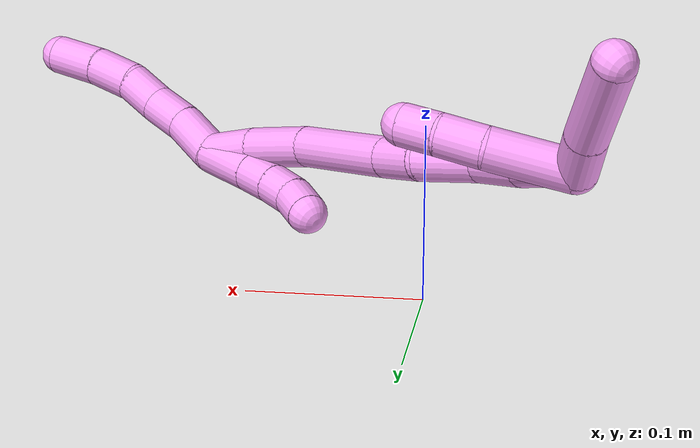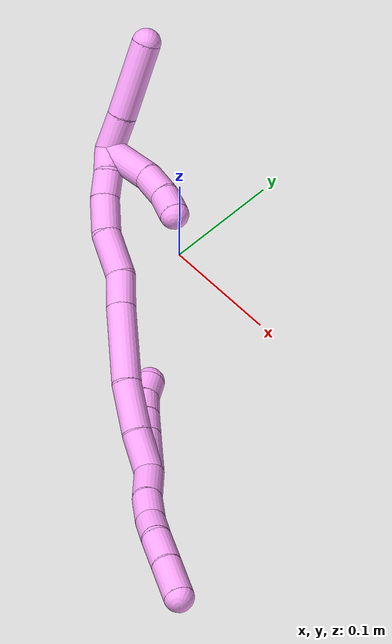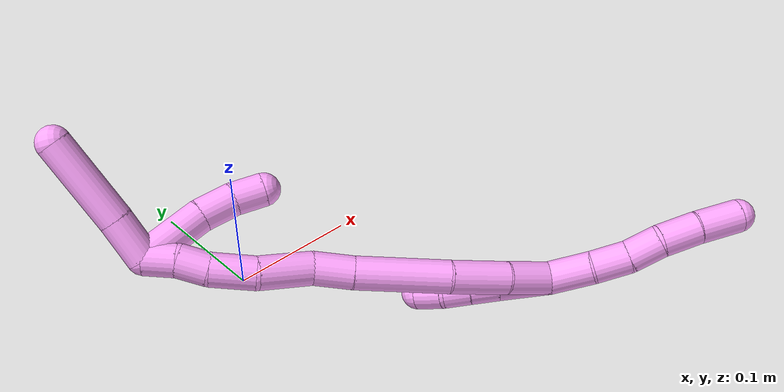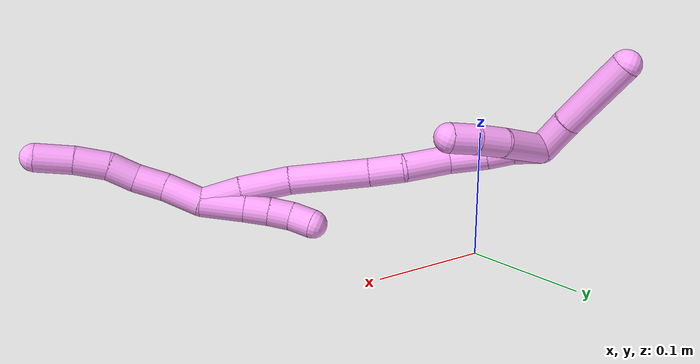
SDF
<sdf version="1.7">
 <world name="default">
  <model name="4">
   <static>0</static>
   <link name="4">
    <collision name="collision-cylinder-e_1_2_8">
     <pose>-1.6e-05 8e-06 0.017228 -0.000478 -0.00091 0</pose>
     <geometry><cylinder><radius>0.0125</radius><length>0.034456</length></cylinder></geometry>
     <surface>
      <friction><ode><mu>1.16</mu><mu2>1.16</mu2><slip1>0</slip1><slip2>0</slip2></ode></friction>
      <contact><ode><kp>1e+06</kp><kd>1</kd><max_vel>0</max_vel><min_depth>0.001</min_depth></ode></contact>
     </surface>
    </collision>
    <visual name="visual-cylinder-e_1_2_8">
     <pose>-1.6e-05 8e-06 0.017228 -0.000478 -0.00091 0</pose>
     <geometry><cylinder><radius>0.0125</radius><length>0.034456</length></cylinder></geometry>
     <material><ambient>1 0.65098 0.996078 1</ambient></material>
    </visual>
    <collision name="collision-cylinder-e_2_8_9">
     <pose>0.002154 0.000143 0.047973 -0.009375 0.160269 -0.000753</pose>
     <geometry><cylinder><radius>0.0125</radius><length>0.027387</length></cylinder></geometry>
     <surface>
      <friction><ode><mu>1.16</mu><mu2>1.16</mu2><slip1>0</slip1><slip2>0</slip2></ode></friction>
      <contact><ode><kp>1e+06</kp><kd>1</kd><max_vel>0</max_vel><min_depth>0.001</min_depth></ode></contact>
     </surface>
    </collision>
    <visual name="visual-cylinder-e_2_8_9">
     <pose>0.002154 0.000143 0.047973 -0.009375 0.160269 -0.000753</pose>
     <geometry><cylinder><radius>0.0125</radius><length>0.027387</length></cylinder></geometry>
     <material><ambient>1 0.65098 0.996078 1</ambient></material>
    </visual>
    <collision name="collision-cylinder-e_3_9_10">
     <pose>0.006337 0.002728 0.073753 -0.197827 0.158408 -0.015753</pose>
     <geometry><cylinder><radius>0.0125</radius><length>0.025329</length></cylinder></geometry>
     <surface>
      <friction><ode><mu>1.16</mu><mu2>1.16</mu2><slip1>0</slip1><slip2>0</slip2></ode></friction>
      <contact><ode><kp>1e+06</kp><kd>1</kd><max_vel>0</max_vel><min_depth>0.001</min_depth></ode></contact>
     </surface>
    </collision>
    <visual name="visual-cylinder-e_3_9_10">
     <pose>0.006337 0.002728 0.073753 -0.197827 0.158408 -0.015753</pose>
     <geometry><cylinder><radius>0.0125</radius><length>0.025329</length></cylinder></geometry>
     <material><ambient>1 0.65098 0.996078 1</ambient></material>
    </visual>
    <collision name="collision-cylinder-e_4_10_11">
     <pose>0.013384 0.00546 0.099914 -0.019731 0.348354 -0.003472</pose>
     <geometry><cylinder><radius>0.0125</radius><length>0.029582</length></cylinder></geometry>
     <surface>
      <friction><ode><mu>1.16</mu><mu2>1.16</mu2><slip1>0</slip1><slip2>0</slip2></ode></friction>
      <contact><ode><kp>1e+06</kp><kd>1</kd><max_vel>0</max_vel><min_depth>0.001</min_depth></ode></contact>
     </surface>
    </collision>
    <visual name="visual-cylinder-e_4_10_11">
     <pose>0.013384 0.00546 0.099914 -0.019731 0.348354 -0.003472</pose>
     <geometry><cylinder><radius>0.0125</radius><length>0.029582</length></cylinder></geometry>
     <material><ambient>1 0.65098 0.996078 1</ambient></material>
    </visual>
    <collision name="collision-cylinder-e_5_11_6">
     <pose>0.025134 0.0047 0.128991 0.068017 0.414966 0.014324</pose>
     <geometry><cylinder><radius>0.0125</radius><length>0.033246</length></cylinder></geometry>
     <surface>
      <friction><ode><mu>1.16</mu><mu2>1.16</mu2><slip1>0</slip1><slip2>0</slip2></ode></friction>
      <contact><ode><kp>1e+06</kp><kd>1</kd><max_vel>0</max_vel><min_depth>0.001</min_depth></ode></contact>
     </surface>
    </collision>
    <visual name="visual-cylinder-e_5_11_6">
     <pose>0.025134 0.0047 0.128991 0.068017 0.414966 0.014324</pose>
     <geometry><cylinder><radius>0.0125</radius><length>0.033246</length></cylinder></geometry>
     <material><ambient>1 0.65098 0.996078 1</ambient></material>
    </visual>
    <collision name="collision-cylinder-e_1_2_12">
     <pose>-0.003985 0.003377 -0.01835 -2.95958 -0.210432 1.71632</pose>
     <geometry><cylinder><radius>0.0125</radius><length>0.038159</length></cylinder></geometry>
     <surface>
      <friction><ode><mu>1.16</mu><mu2>1.16</mu2><slip1>0</slip1><slip2>0</slip2></ode></friction>
      <contact><ode><kp>1e+06</kp><kd>1</kd><max_vel>0</max_vel><min_depth>0.001</min_depth></ode></contact>
     </surface>
    </collision>
    <visual name="visual-cylinder-e_1_2_12">
     <pose>-0.003985 0.003377 -0.01835 -2.95958 -0.210432 1.71632</pose>
     <geometry><cylinder><radius>0.0125</radius><length>0.038159</length></cylinder></geometry>
     <material><ambient>1 0.65098 0.996078 1</ambient></material>
    </visual>
    <collision name="collision-cylinder-e_2_12_13">
     <pose>-0.010049 0.008468 -0.047117 -2.97855 -0.194396 1.74671</pose>
     <geometry><cylinder><radius>0.0125</radius><length>0.021517</length></cylinder></geometry>
     <surface>
      <friction><ode><mu>1.16</mu><mu2>1.16</mu2><slip1>0</slip1><slip2>0</slip2></ode></friction>
      <contact><ode><kp>1e+06</kp><kd>1</kd><max_vel>0</max_vel><min_depth>0.001</min_depth></ode></contact>
     </surface>
    </collision>
    <visual name="visual-cylinder-e_2_12_13">
     <pose>-0.010049 0.008468 -0.047117 -2.97855 -0.194396 1.74671</pose>
     <geometry><cylinder><radius>0.0125</radius><length>0.021517</length></cylinder></geometry>
     <material><ambient>1 0.65098 0.996078 1</ambient></material>
    </visual>
    <collision name="collision-cylinder-e_3_13_14">
     <pose>-0.01353 0.011549 -0.06743 -3.00434 -0.13949 1.587</pose>
     <geometry><cylinder><radius>0.0125</radius><length>0.020178</length></cylinder></geometry>
     <surface>
      <friction><ode><mu>1.16</mu><mu2>1.16</mu2><slip1>0</slip1><slip2>0</slip2></ode></friction>
      <contact><ode><kp>1e+06</kp><kd>1</kd><max_vel>0</max_vel><min_depth>0.001</min_depth></ode></contact>
     </surface>
    </collision>
    <visual name="visual-cylinder-e_3_13_14">
     <pose>-0.01353 0.011549 -0.06743 -3.00434 -0.13949 1.587</pose>
     <geometry><cylinder><radius>0.0125</radius><length>0.020178</length></cylinder></geometry>
     <material><ambient>1 0.65098 0.996078 1</ambient></material>
    </visual>
    <collision name="collision-cylinder-e_4_14_5">
     <pose>-0.013798 0.014694 -0.087176 -2.96297 0.112898 -1.12583</pose>
     <geometry><cylinder><radius>0.0125</radius><length>0.020146</length></cylinder></geometry>
     <surface>
      <friction><ode><mu>1.16</mu><mu2>1.16</mu2><slip1>0</slip1><slip2>0</slip2></ode></friction>
      <contact><ode><kp>1e+06</kp><kd>1</kd><max_vel>0</max_vel><min_depth>0.001</min_depth></ode></contact>
     </surface>
    </collision>
    <visual name="visual-cylinder-e_4_14_5">
     <pose>-0.013798 0.014694 -0.087176 -2.96297 0.112898 -1.12583</pose>
     <geometry><cylinder><radius>0.0125</radius><length>0.020146</length></cylinder></geometry>
     <material><ambient>1 0.65098 0.996078 1</ambient></material>
    </visual>
    <collision name="collision-cylinder-e_1_2_15">
     <pose>-0.00962 0.006537 -0.013342 -2.68598 -0.574585 1.811</pose>
     <geometry><cylinder><radius>0.0125</radius><length>0.0354</length></cylinder></geometry>
     <surface>
      <friction><ode><mu>1.16</mu><mu2>1.16</mu2><slip1>0</slip1><slip2>0</slip2></ode></friction>
      <contact><ode><kp>1e+06</kp><kd>1</kd><max_vel>0</max_vel><min_depth>0.001</min_depth></ode></contact>
     </surface>
    </collision>
    <visual name="visual-cylinder-e_1_2_15">
     <pose>-0.00962 0.006537 -0.013342 -2.68598 -0.574585 1.811</pose>
     <geometry><cylinder><radius>0.0125</radius><length>0.0354</length></cylinder></geometry>
     <material><ambient>1 0.65098 0.996078 1</ambient></material>
    </visual>
    <collision name="collision-cylinder-e_2_15_16">
     <pose>-0.028882 0.021112 -0.044678 -2.72152 -0.455052 1.6533</pose>
     <geometry><cylinder><radius>0.0125</radius><length>0.043879</length></cylinder></geometry>
     <surface>
      <friction><ode><mu>1.16</mu><mu2>1.16</mu2><slip1>0</slip1><slip2>0</slip2></ode></friction>
      <contact><ode><kp>1e+06</kp><kd>1</kd><max_vel>0</max_vel><min_depth>0.001</min_depth></ode></contact>
     </surface>
    </collision>
    <visual name="visual-cylinder-e_2_15_16">
     <pose>-0.028882 0.021112 -0.044678 -2.72152 -0.455052 1.6533</pose>
     <geometry><cylinder><radius>0.0125</radius><length>0.043879</length></cylinder></geometry>
     <material><ambient>1 0.65098 0.996078 1</ambient></material>
    </visual>
    <collision name="collision-cylinder-e_3_16_17">
     <pose>-0.049174 0.041909 -0.093629 -2.75064 -0.307926 1.32954</pose>
     <geometry><cylinder><radius>0.0125</radius><length>0.070274</length></cylinder></geometry>
     <surface>
      <friction><ode><mu>1.16</mu><mu2>1.16</mu2><slip1>0</slip1><slip2>0</slip2></ode></friction>
      <contact><ode><kp>1e+06</kp><kd>1</kd><max_vel>0</max_vel><min_depth>0.001</min_depth></ode></contact>
     </surface>
    </collision>
    <visual name="visual-cylinder-e_3_16_17">
     <pose>-0.049174 0.041909 -0.093629 -2.75064 -0.307926 1.32954</pose>
     <geometry><cylinder><radius>0.0125</radius><length>0.070274</length></cylinder></geometry>
     <material><ambient>1 0.65098 0.996078 1</ambient></material>
    </visual>
    <collision name="collision-cylinder-e_4_17_18">
     <pose>-0.063909 0.061068 -0.13757 -2.68365 -0.275086 1.07187</pose>
     <geometry><cylinder><radius>0.0125</radius><length>0.030078</length></cylinder></geometry>
     <surface>
      <friction><ode><mu>1.16</mu><mu2>1.16</mu2><slip1>0</slip1><slip2>0</slip2></ode></friction>
      <contact><ode><kp>1e+06</kp><kd>1</kd><max_vel>0</max_vel><min_depth>0.001</min_depth></ode></contact>
     </surface>
    </collision>
    <visual name="visual-cylinder-e_4_17_18">
     <pose>-0.063909 0.061068 -0.13757 -2.68365 -0.275086 1.07187</pose>
     <geometry><cylinder><radius>0.0125</radius><length>0.030078</length></cylinder></geometry>
     <material><ambient>1 0.65098 0.996078 1</ambient></material>
    </visual>
    <collision name="collision-cylinder-e_5_18_19">
     <pose>-0.078368 0.072891 -0.166982 -2.8227 -0.540115 2.08905</pose>
     <geometry><cylinder><radius>0.0125</radius><length>0.040348</length></cylinder></geometry>
     <surface>
      <friction><ode><mu>1.16</mu><mu2>1.16</mu2><slip1>0</slip1><slip2>0</slip2></ode></friction>
      <contact><ode><kp>1e+06</kp><kd>1</kd><max_vel>0</max_vel><min_depth>0.001</min_depth></ode></contact>
     </surface>
    </collision>
    <visual name="visual-cylinder-e_5_18_19">
     <pose>-0.078368 0.072891 -0.166982 -2.8227 -0.540115 2.08905</pose>
     <geometry><cylinder><radius>0.0125</radius><length>0.040348</length></cylinder></geometry>
     <material><ambient>1 0.65098 0.996078 1</ambient></material>
    </visual>
    <collision name="collision-cylinder-e_6_19_20">
     <pose>-0.093592 0.084942 -0.197957 -2.71414 -0.294597 1.19928</pose>
     <geometry><cylinder><radius>0.0125</radius><length>0.033405</length></cylinder></geometry>
     <surface>
      <friction><ode><mu>1.16</mu><mu2>1.16</mu2><slip1>0</slip1><slip2>0</slip2></ode></friction>
      <contact><ode><kp>1e+06</kp><kd>1</kd><max_vel>0</max_vel><min_depth>0.001</min_depth></ode></contact>
     </surface>
    </collision>
    <visual name="visual-cylinder-e_6_19_20">
     <pose>-0.093592 0.084942 -0.197957 -2.71414 -0.294597 1.19928</pose>
     <geometry><cylinder><radius>0.0125</radius><length>0.033405</length></cylinder></geometry>
     <material><ambient>1 0.65098 0.996078 1</ambient></material>
    </visual>
    <collision name="collision-cylinder-e_7_20_21">
     <pose>-0.100614 0.098058 -0.221756 -2.52995 -0.18986 0.585811</pose>
     <geometry><cylinder><radius>0.0125</radius><length>0.02302</length></cylinder></geometry>
     <surface>
      <friction><ode><mu>1.16</mu><mu2>1.16</mu2><slip1>0</slip1><slip2>0</slip2></ode></friction>
      <contact><ode><kp>1e+06</kp><kd>1</kd><max_vel>0</max_vel><min_depth>0.001</min_depth></ode></contact>
     </surface>
    </collision>
    <visual name="visual-cylinder-e_7_20_21">
     <pose>-0.100614 0.098058 -0.221756 -2.52995 -0.18986 0.585811</pose>
     <geometry><cylinder><radius>0.0125</radius><length>0.02302</length></cylinder></geometry>
     <material><ambient>1 0.65098 0.996078 1</ambient></material>
    </visual>
    <collision name="collision-cylinder-e_8_21_1">
     <pose>-0.105087 0.108851 -0.241751 -2.76056 -0.196313 0.944184</pose>
     <geometry><cylinder><radius>0.0125</radius><length>0.023594</length></cylinder></geometry>
     <surface>
      <friction><ode><mu>1.16</mu><mu2>1.16</mu2><slip1>0</slip1><slip2>0</slip2></ode></friction>
      <contact><ode><kp>1e+06</kp><kd>1</kd><max_vel>0</max_vel><min_depth>0.001</min_depth></ode></contact>
     </surface>
    </collision>
    <visual name="visual-cylinder-e_8_21_1">
     <pose>-0.105087 0.108851 -0.241751 -2.76056 -0.196313 0.944184</pose>
     <geometry><cylinder><radius>0.0125</radius><length>0.023594</length></cylinder></geometry>
     <material><ambient>1 0.65098 0.996078 1</ambient></material>
    </visual>
    <collision name="collision-cylinder-e_1_1_22">
     <pose>-0.109383 0.129114 -0.25654 -1.81924 -0.120554 0.154834</pose>
     <geometry><cylinder><radius>0.0125</radius><length>0.033171</length></cylinder></geometry>
     <surface>
      <friction><ode><mu>1.16</mu><mu2>1.16</mu2><slip1>0</slip1><slip2>0</slip2></ode></friction>
      <contact><ode><kp>1e+06</kp><kd>1</kd><max_vel>0</max_vel><min_depth>0.001</min_depth></ode></contact>
     </surface>
    </collision>
    <visual name="visual-cylinder-e_1_1_22">
     <pose>-0.109383 0.129114 -0.25654 -1.81924 -0.120554 0.154834</pose>
     <geometry><cylinder><radius>0.0125</radius><length>0.033171</length></cylinder></geometry>
     <material><ambient>1 0.65098 0.996078 1</ambient></material>
    </visual>
    <collision name="collision-cylinder-e_2_22_4">
     <pose>-0.116125 0.17678 -0.270007 -1.85952 -0.142563 0.190806</pose>
     <geometry><cylinder><radius>0.0125</radius><length>0.066829</length></cylinder></geometry>
     <surface>
      <friction><ode><mu>1.16</mu><mu2>1.16</mu2><slip1>0</slip1><slip2>0</slip2></ode></friction>
      <contact><ode><kp>1e+06</kp><kd>1</kd><max_vel>0</max_vel><min_depth>0.001</min_depth></ode></contact>
     </surface>
    </collision>
    <visual name="visual-cylinder-e_2_22_4">
     <pose>-0.116125 0.17678 -0.270007 -1.85952 -0.142563 0.190806</pose>
     <geometry><cylinder><radius>0.0125</radius><length>0.066829</length></cylinder></geometry>
     <material><ambient>1 0.65098 0.996078 1</ambient></material>
    </visual>
    <collision name="collision-cylinder-e_1_1_23">
     <pose>-0.091215 0.119989 -0.234364 -0.360531 0.695609 -0.13195</pose>
     <geometry><cylinder><radius>0.0125</radius><length>0.050475</length></cylinder></geometry>
     <surface>
      <friction><ode><mu>1.16</mu><mu2>1.16</mu2><slip1>0</slip1><slip2>0</slip2></ode></friction>
      <contact><ode><kp>1e+06</kp><kd>1</kd><max_vel>0</max_vel><min_depth>0.001</min_depth></ode></contact>
     </surface>
    </collision>
    <visual name="visual-cylinder-e_1_1_23">
     <pose>-0.091215 0.119989 -0.234364 -0.360531 0.695609 -0.13195</pose>
     <geometry><cylinder><radius>0.0125</radius><length>0.050475</length></cylinder></geometry>
     <material><ambient>1 0.65098 0.996078 1</ambient></material>
    </visual>
    <collision name="collision-cylinder-e_2_23_24">
     <pose>-0.067773 0.12846 -0.205064 -0.145459 0.572015 -0.042844</pose>
     <geometry><cylinder><radius>0.0125</radius><length>0.026855</length></cylinder></geometry>
     <surface>
      <friction><ode><mu>1.16</mu><mu2>1.16</mu2><slip1>0</slip1><slip2>0</slip2></ode></friction>
      <contact><ode><kp>1e+06</kp><kd>1</kd><max_vel>0</max_vel><min_depth>0.001</min_depth></ode></contact>
     </surface>
    </collision>
    <visual name="visual-cylinder-e_2_23_24">
     <pose>-0.067773 0.12846 -0.205064 -0.145459 0.572015 -0.042844</pose>
     <geometry><cylinder><radius>0.0125</radius><length>0.026855</length></cylinder></geometry>
     <material><ambient>1 0.65098 0.996078 1</ambient></material>
    </visual>
    <collision name="collision-cylinder-e_3_24_3">
     <pose>-0.055297 0.129779 -0.18383 0.031514 0.477326 0.007668</pose>
     <geometry><cylinder><radius>0.0125</radius><length>0.02267</length></cylinder></geometry>
     <surface>
      <friction><ode><mu>1.16</mu><mu2>1.16</mu2><slip1>0</slip1><slip2>0</slip2></ode></friction>
      <contact><ode><kp>1e+06</kp><kd>1</kd><max_vel>0</max_vel><min_depth>0.001</min_depth></ode></contact>
     </surface>
    </collision>
    <visual name="visual-cylinder-e_3_24_3">
     <pose>-0.055297 0.129779 -0.18383 0.031514 0.477326 0.007668</pose>
     <geometry><cylinder><radius>0.0125</radius><length>0.02267</length></cylinder></geometry>
     <material><ambient>1 0.65098 0.996078 1</ambient></material>
    </visual>
    <collision name="collision-sphere-3">
     <pose>-0.050089 0.129462 -0.173767 0 -0 0</pose>
     <geometry><sphere><radius>0.0125</radius></sphere></geometry>
     <surface>
      <friction><ode><mu>1.16</mu><mu2>1.16</mu2><slip1>0</slip1><slip2>0</slip2></ode></friction>
      <contact><ode><kp>1e+06</kp><kd>1</kd><max_vel>0</max_vel><min_depth>0.001</min_depth></ode></contact>
     </surface>
    </collision>
    <visual name="visual-sphere-3">
     <pose>-0.050089 0.129462 -0.173767 0 -0 0</pose>
     <geometry><sphere><radius>0.0125</radius></sphere></geometry>
     <material><ambient>1 0.65098 0.996078 1</ambient></material>
    </visual>
    <collision name="collision-sphere-24">
     <pose>-0.060504 0.130096 -0.193893 0 -0 0</pose>
     <geometry><sphere><radius>0.0125</radius></sphere></geometry>
     <surface>
      <friction><ode><mu>1.16</mu><mu2>1.16</mu2><slip1>0</slip1><slip2>0</slip2></ode></friction>
      <contact><ode><kp>1e+06</kp><kd>1</kd><max_vel>0</max_vel><min_depth>0.001</min_depth></ode></contact>
     </surface>
    </collision>
    <visual name="visual-sphere-24">
     <pose>-0.060504 0.130096 -0.193893 0 -0 0</pose>
     <geometry><sphere><radius>0.0125</radius></sphere></geometry>
     <material><ambient>1 0.65098 0.996078 1</ambient></material>
    </visual>
    <collision name="collision-sphere-23">
     <pose>-0.075041 0.126823 -0.216235 0 -0 0</pose>
     <geometry><sphere><radius>0.0125</radius></sphere></geometry>
     <surface>
      <friction><ode><mu>1.16</mu><mu2>1.16</mu2><slip1>0</slip1><slip2>0</slip2></ode></friction>
      <contact><ode><kp>1e+06</kp><kd>1</kd><max_vel>0</max_vel><min_depth>0.001</min_depth></ode></contact>
     </surface>
    </collision>
    <visual name="visual-sphere-23">
     <pose>-0.075041 0.126823 -0.216235 0 -0 0</pose>
     <geometry><sphere><radius>0.0125</radius></sphere></geometry>
     <material><ambient>1 0.65098 0.996078 1</ambient></material>
    </visual>
    <collision name="collision-sphere-4">
     <pose>-0.120873 0.208486 -0.279424 0 -0 0</pose>
     <geometry><sphere><radius>0.0125</radius></sphere></geometry>
     <surface>
      <friction><ode><mu>1.16</mu><mu2>1.16</mu2><slip1>0</slip1><slip2>0</slip2></ode></friction>
      <contact><ode><kp>1e+06</kp><kd>1</kd><max_vel>0</max_vel><min_depth>0.001</min_depth></ode></contact>
     </surface>
    </collision>
    <visual name="visual-sphere-4">
     <pose>-0.120873 0.208486 -0.279424 0 -0 0</pose>
     <geometry><sphere><radius>0.0125</radius></sphere></geometry>
     <material><ambient>1 0.65098 0.996078 1</ambient></material>
    </visual>
    <collision name="collision-sphere-22">
     <pose>-0.111377 0.145073 -0.260589 0 -0 0</pose>
     <geometry><sphere><radius>0.0125</radius></sphere></geometry>
     <surface>
      <friction><ode><mu>1.16</mu><mu2>1.16</mu2><slip1>0</slip1><slip2>0</slip2></ode></friction>
      <contact><ode><kp>1e+06</kp><kd>1</kd><max_vel>0</max_vel><min_depth>0.001</min_depth></ode></contact>
     </surface>
    </collision>
    <visual name="visual-sphere-22">
     <pose>-0.111377 0.145073 -0.260589 0 -0 0</pose>
     <geometry><sphere><radius>0.0125</radius></sphere></geometry>
     <material><ambient>1 0.65098 0.996078 1</ambient></material>
    </visual>
    <collision name="collision-sphere-1">
     <pose>-0.107388 0.113154 -0.252492 0 -0 0</pose>
     <geometry><sphere><radius>0.0125</radius></sphere></geometry>
     <surface>
      <friction><ode><mu>1.16</mu><mu2>1.16</mu2><slip1>0</slip1><slip2>0</slip2></ode></friction>
      <contact><ode><kp>1e+06</kp><kd>1</kd><max_vel>0</max_vel><min_depth>0.001</min_depth></ode></contact>
     </surface>
    </collision>
    <visual name="visual-sphere-1">
     <pose>-0.107388 0.113154 -0.252492 0 -0 0</pose>
     <geometry><sphere><radius>0.0125</radius></sphere></geometry>
     <material><ambient>1 0.65098 0.996078 1</ambient></material>
    </visual>
    <collision name="collision-sphere-21">
     <pose>-0.102786 0.104549 -0.23101 0 -0 0</pose>
     <geometry><sphere><radius>0.0125</radius></sphere></geometry>
     <surface>
      <friction><ode><mu>1.16</mu><mu2>1.16</mu2><slip1>0</slip1><slip2>0</slip2></ode></friction>
      <contact><ode><kp>1e+06</kp><kd>1</kd><max_vel>0</max_vel><min_depth>0.001</min_depth></ode></contact>
     </surface>
    </collision>
    <visual name="visual-sphere-21">
     <pose>-0.102786 0.104549 -0.23101 0 -0 0</pose>
     <geometry><sphere><radius>0.0125</radius></sphere></geometry>
     <material><ambient>1 0.65098 0.996078 1</ambient></material>
    </visual>
    <collision name="collision-sphere-6">
     <pose>0.031836 0.003667 0.144169 0 -0 0</pose>
     <geometry><sphere><radius>0.0125</radius></sphere></geometry>
     <surface>
      <friction><ode><mu>1.16</mu><mu2>1.16</mu2><slip1>0</slip1><slip2>0</slip2></ode></friction>
      <contact><ode><kp>1e+06</kp><kd>1</kd><max_vel>0</max_vel><min_depth>0.001</min_depth></ode></contact>
     </surface>
    </collision>
    <visual name="visual-sphere-6">
     <pose>0.031836 0.003667 0.144169 0 -0 0</pose>
     <geometry><sphere><radius>0.0125</radius></sphere></geometry>
     <material><ambient>1 0.65098 0.996078 1</ambient></material>
    </visual>
    <collision name="collision-sphere-11">
     <pose>0.018433 0.005734 0.113814 0 -0 0</pose>
     <geometry><sphere><radius>0.0125</radius></sphere></geometry>
     <surface>
      <friction><ode><mu>1.16</mu><mu2>1.16</mu2><slip1>0</slip1><slip2>0</slip2></ode></friction>
      <contact><ode><kp>1e+06</kp><kd>1</kd><max_vel>0</max_vel><min_depth>0.001</min_depth></ode></contact>
     </surface>
    </collision>
    <visual name="visual-sphere-11">
     <pose>0.018433 0.005734 0.113814 0 -0 0</pose>
     <geometry><sphere><radius>0.0125</radius></sphere></geometry>
     <material><ambient>1 0.65098 0.996078 1</ambient></material>
    </visual>
    <collision name="collision-sphere-10">
     <pose>0.008335 0.005186 0.086015 0 -0 0</pose>
     <geometry><sphere><radius>0.0125</radius></sphere></geometry>
     <surface>
      <friction><ode><mu>1.16</mu><mu2>1.16</mu2><slip1>0</slip1><slip2>0</slip2></ode></friction>
      <contact><ode><kp>1e+06</kp><kd>1</kd><max_vel>0</max_vel><min_depth>0.001</min_depth></ode></contact>
     </surface>
    </collision>
    <visual name="visual-sphere-10">
     <pose>0.008335 0.005186 0.086015 0 -0 0</pose>
     <geometry><sphere><radius>0.0125</radius></sphere></geometry>
     <material><ambient>1 0.65098 0.996078 1</ambient></material>
    </visual>
    <collision name="collision-sphere-9">
     <pose>0.004339 0.00027 0.061491 0 -0 0</pose>
     <geometry><sphere><radius>0.0125</radius></sphere></geometry>
     <surface>
      <friction><ode><mu>1.16</mu><mu2>1.16</mu2><slip1>0</slip1><slip2>0</slip2></ode></friction>
      <contact><ode><kp>1e+06</kp><kd>1</kd><max_vel>0</max_vel><min_depth>0.001</min_depth></ode></contact>
     </surface>
    </collision>
    <visual name="visual-sphere-9">
     <pose>0.004339 0.00027 0.061491 0 -0 0</pose>
     <geometry><sphere><radius>0.0125</radius></sphere></geometry>
     <material><ambient>1 0.65098 0.996078 1</ambient></material>
    </visual>
    <collision name="collision-sphere-2">
     <geometry><sphere><radius>0.0125</radius></sphere></geometry>
     <surface>
      <friction><ode><mu>1.16</mu><mu2>1.16</mu2><slip1>0</slip1><slip2>0</slip2></ode></friction>
      <contact><ode><kp>1e+06</kp><kd>1</kd><max_vel>0</max_vel><min_depth>0.001</min_depth></ode></contact>
     </surface>
    </collision>
    <visual name="visual-sphere-2">
     <geometry><sphere><radius>0.0125</radius></sphere></geometry>
     <material><ambient>1 0.65098 0.996078 1</ambient></material>
    </visual>
    <collision name="collision-sphere-19">
     <pose>-0.088742 0.078316 -0.183412 0 -0 0</pose>
     <geometry><sphere><radius>0.0125</radius></sphere></geometry>
     <surface>
      <friction><ode><mu>1.16</mu><mu2>1.16</mu2><slip1>0</slip1><slip2>0</slip2></ode></friction>
      <contact><ode><kp>1e+06</kp><kd>1</kd><max_vel>0</max_vel><min_depth>0.001</min_depth></ode></contact>
     </surface>
    </collision>
    <visual name="visual-sphere-19">
     <pose>-0.088742 0.078316 -0.183412 0 -0 0</pose>
     <geometry><sphere><radius>0.0125</radius></sphere></geometry>
     <material><ambient>1 0.65098 0.996078 1</ambient></material>
    </visual>
    <collision name="collision-sphere-8">
     <pose>-3.1e-05 1.6e-05 0.034456 0 -0 0</pose>
     <geometry><sphere><radius>0.0125</radius></sphere></geometry>
     <surface>
      <friction><ode><mu>1.16</mu><mu2>1.16</mu2><slip1>0</slip1><slip2>0</slip2></ode></friction>
      <contact><ode><kp>1e+06</kp><kd>1</kd><max_vel>0</max_vel><min_depth>0.001</min_depth></ode></contact>
     </surface>
    </collision>
    <visual name="visual-sphere-8">
     <pose>-3.1e-05 1.6e-05 0.034456 0 -0 0</pose>
     <geometry><sphere><radius>0.0125</radius></sphere></geometry>
     <material><ambient>1 0.65098 0.996078 1</ambient></material>
    </visual>
    <collision name="collision-sphere-12">
     <pose>-0.007971 0.006755 -0.036701 0 -0 0</pose>
     <geometry><sphere><radius>0.0125</radius></sphere></geometry>
     <surface>
      <friction><ode><mu>1.16</mu><mu2>1.16</mu2><slip1>0</slip1><slip2>0</slip2></ode></friction>
      <contact><ode><kp>1e+06</kp><kd>1</kd><max_vel>0</max_vel><min_depth>0.001</min_depth></ode></contact>
     </surface>
    </collision>
    <visual name="visual-sphere-12">
     <pose>-0.007971 0.006755 -0.036701 0 -0 0</pose>
     <geometry><sphere><radius>0.0125</radius></sphere></geometry>
     <material><ambient>1 0.65098 0.996078 1</ambient></material>
    </visual>
    <collision name="collision-sphere-13">
     <pose>-0.012127 0.010182 -0.057532 0 -0 0</pose>
     <geometry><sphere><radius>0.0125</radius></sphere></geometry>
     <surface>
      <friction><ode><mu>1.16</mu><mu2>1.16</mu2><slip1>0</slip1><slip2>0</slip2></ode></friction>
      <contact><ode><kp>1e+06</kp><kd>1</kd><max_vel>0</max_vel><min_depth>0.001</min_depth></ode></contact>
     </surface>
    </collision>
    <visual name="visual-sphere-13">
     <pose>-0.012127 0.010182 -0.057532 0 -0 0</pose>
     <geometry><sphere><radius>0.0125</radius></sphere></geometry>
     <material><ambient>1 0.65098 0.996078 1</ambient></material>
    </visual>
    <collision name="collision-sphere-14">
     <pose>-0.014933 0.012916 -0.077327 0 -0 0</pose>
     <geometry><sphere><radius>0.0125</radius></sphere></geometry>
     <surface>
      <friction><ode><mu>1.16</mu><mu2>1.16</mu2><slip1>0</slip1><slip2>0</slip2></ode></friction>
      <contact><ode><kp>1e+06</kp><kd>1</kd><max_vel>0</max_vel><min_depth>0.001</min_depth></ode></contact>
     </surface>
    </collision>
    <visual name="visual-sphere-14">
     <pose>-0.014933 0.012916 -0.077327 0 -0 0</pose>
     <geometry><sphere><radius>0.0125</radius></sphere></geometry>
     <material><ambient>1 0.65098 0.996078 1</ambient></material>
    </visual>
    <collision name="collision-sphere-5">
     <pose>-0.012663 0.016472 -0.097026 0 -0 0</pose>
     <geometry><sphere><radius>0.0125</radius></sphere></geometry>
     <surface>
      <friction><ode><mu>1.16</mu><mu2>1.16</mu2><slip1>0</slip1><slip2>0</slip2></ode></friction>
      <contact><ode><kp>1e+06</kp><kd>1</kd><max_vel>0</max_vel><min_depth>0.001</min_depth></ode></contact>
     </surface>
    </collision>
    <visual name="visual-sphere-5">
     <pose>-0.012663 0.016472 -0.097026 0 -0 0</pose>
     <geometry><sphere><radius>0.0125</radius></sphere></geometry>
     <material><ambient>1 0.65098 0.996078 1</ambient></material>
    </visual>
    <collision name="collision-sphere-15">
     <pose>-0.019239 0.013075 -0.026684 0 -0 0</pose>
     <geometry><sphere><radius>0.0125</radius></sphere></geometry>
     <surface>
      <friction><ode><mu>1.16</mu><mu2>1.16</mu2><slip1>0</slip1><slip2>0</slip2></ode></friction>
      <contact><ode><kp>1e+06</kp><kd>1</kd><max_vel>0</max_vel><min_depth>0.001</min_depth></ode></contact>
     </surface>
    </collision>
    <visual name="visual-sphere-15">
     <pose>-0.019239 0.013075 -0.026684 0 -0 0</pose>
     <geometry><sphere><radius>0.0125</radius></sphere></geometry>
     <material><ambient>1 0.65098 0.996078 1</ambient></material>
    </visual>
    <collision name="collision-sphere-16">
     <pose>-0.038525 0.029149 -0.062671 0 -0 0</pose>
     <geometry><sphere><radius>0.0125</radius></sphere></geometry>
     <surface>
      <friction><ode><mu>1.16</mu><mu2>1.16</mu2><slip1>0</slip1><slip2>0</slip2></ode></friction>
      <contact><ode><kp>1e+06</kp><kd>1</kd><max_vel>0</max_vel><min_depth>0.001</min_depth></ode></contact>
     </surface>
    </collision>
    <visual name="visual-sphere-16">
     <pose>-0.038525 0.029149 -0.062671 0 -0 0</pose>
     <geometry><sphere><radius>0.0125</radius></sphere></geometry>
     <material><ambient>1 0.65098 0.996078 1</ambient></material>
    </visual>
    <collision name="collision-sphere-17">
     <pose>-0.059824 0.054669 -0.124587 0 -0 0</pose>
     <geometry><sphere><radius>0.0125</radius></sphere></geometry>
     <surface>
      <friction><ode><mu>1.16</mu><mu2>1.16</mu2><slip1>0</slip1><slip2>0</slip2></ode></friction>
      <contact><ode><kp>1e+06</kp><kd>1</kd><max_vel>0</max_vel><min_depth>0.001</min_depth></ode></contact>
     </surface>
    </collision>
    <visual name="visual-sphere-17">
     <pose>-0.059824 0.054669 -0.124587 0 -0 0</pose>
     <geometry><sphere><radius>0.0125</radius></sphere></geometry>
     <material><ambient>1 0.65098 0.996078 1</ambient></material>
    </visual>
    <collision name="collision-sphere-18">
     <pose>-0.067994 0.067467 -0.150552 0 -0 0</pose>
     <geometry><sphere><radius>0.0125</radius></sphere></geometry>
     <surface>
      <friction><ode><mu>1.16</mu><mu2>1.16</mu2><slip1>0</slip1><slip2>0</slip2></ode></friction>
      <contact><ode><kp>1e+06</kp><kd>1</kd><max_vel>0</max_vel><min_depth>0.001</min_depth></ode></contact>
     </surface>
    </collision>
    <visual name="visual-sphere-18">
     <pose>-0.067994 0.067467 -0.150552 0 -0 0</pose>
     <geometry><sphere><radius>0.0125</radius></sphere></geometry>
     <material><ambient>1 0.65098 0.996078 1</ambient></material>
    </visual>
    <collision name="collision-sphere-20">
     <pose>-0.098442 0.091568 -0.212502 0 -0 0</pose>
     <geometry><sphere><radius>0.0125</radius></sphere></geometry>
     <surface>
      <friction><ode><mu>1.16</mu><mu2>1.16</mu2><slip1>0</slip1><slip2>0</slip2></ode></friction>
      <contact><ode><kp>1e+06</kp><kd>1</kd><max_vel>0</max_vel><min_depth>0.001</min_depth></ode></contact>
     </surface>
    </collision>
    <visual name="visual-sphere-20">
     <pose>-0.098442 0.091568 -0.212502 0 -0 0</pose>
     <geometry><sphere><radius>0.0125</radius></sphere></geometry>
     <material><ambient>1 0.65098 0.996078 1</ambient></material>
    </visual>
    <inertial>
     <pose>-0.048807 0.06176 -0.105571 0 -0 0</pose>
     <mass>0.75</mass>
     <inertia>
      <ixx>0.000134</ixx>
      <ixy>0</ixy>
      <ixz>0</ixz>
      <iyy>0.000115</iyy>
      <iyz>0</iyz>
      <izz>-5.7e-05</izz>
     </inertia>
    </inertial>
   </link>
   <pose>0.153927 -0.179449 0.026985 1.17092 0.418779 0.601455</pose>
  </model>
 </world>
</sdf>
